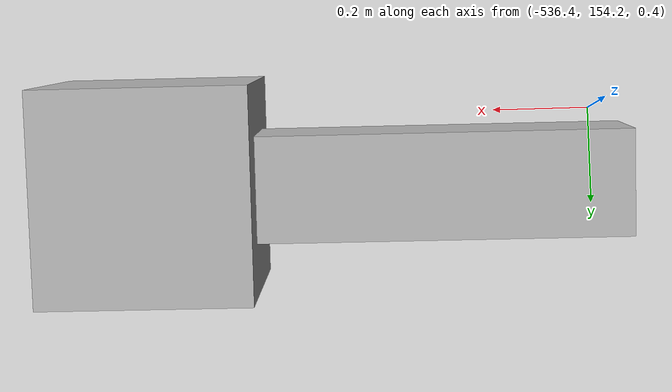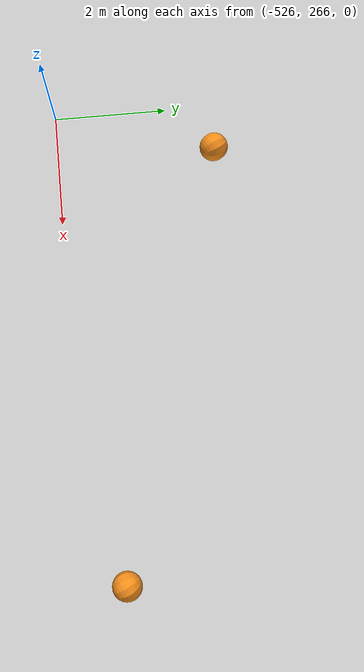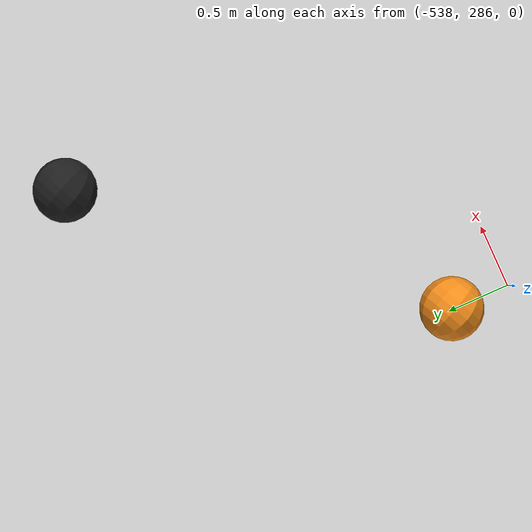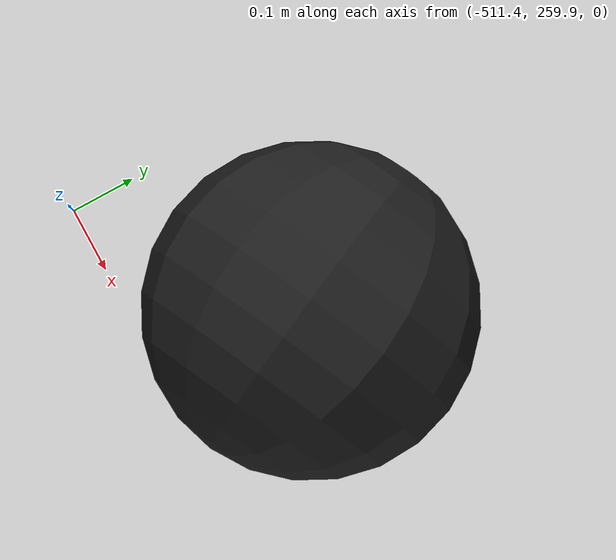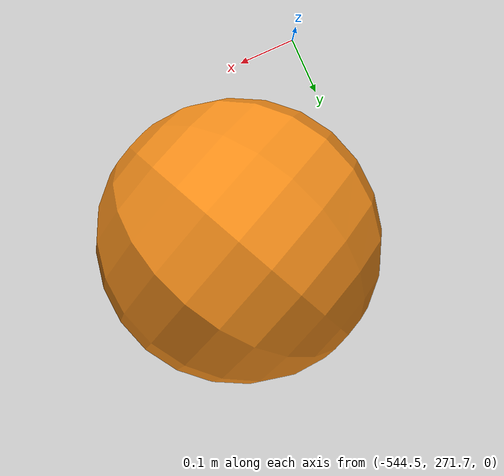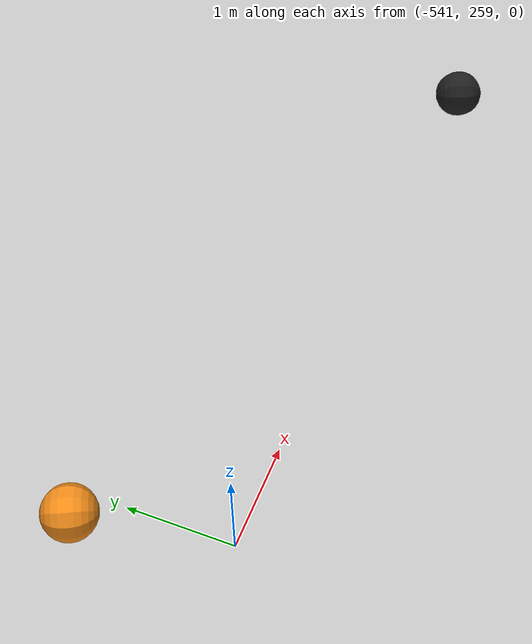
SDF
<sdf version="1.6">
 <world name="robotx_example_course">
  <spherical_coordinates>
   <surface_model>EARTH_WGS84</surface_model>
   <world_frame_orientation>ENU</world_frame_orientation>
   <latitude_deg>-33.724223</latitude_deg>
   <longitude_deg>150.679736</longitude_deg>
   <elevation>0.0</elevation>
   <heading_deg>0.0</heading_deg>
  </spherical_coordinates>
  <include><uri>model://sun</uri></include>
  <include>
   <name>post_0</name>
   <pose>-535.916809 154.362869 0.675884 -0.17182 0.030464 -0.005286</pose>
   <uri>model://post</uri>
  </include>
  <include>
   <name>post_1</name>
   <pose>-527.48999 153.854782 0.425844 -0.1365 0  0</pose>
   <uri>model://post</uri>
  </include>
  <include>
   <name>post_2</name>
   <pose>-544.832825 156.671951 0.499025 -0.162625 0 0</pose>
   <uri>model://post</uri>
  </include>
  <include>
   <name>blue_projectile</name>
   <pose>-545 60 0.03 0 0 0</pose>
   <uri>model://blue_projectile</uri>
  </include>
  <plugin filename="libusv_gazebo_wind_plugin.so" name="wind">
   <wind_obj>
    <name>wamv</name>
    <link_name>wamv/base_link</link_name>
    <coeff_vector>.5 .5 .33</coeff_vector>
   </wind_obj>
   <wind_direction>142</wind_direction>
   <wind_mean_velocity>2.0</wind_mean_velocity>
   <var_wind_gain_constants>5.0</var_wind_gain_constants>
   <var_wind_time_constants>2</var_wind_time_constants>
   <random_seed>72</random_seed>
   <update_rate>10</update_rate>
   <topic_wind_speed>/vrx/debug/wind/speed</topic_wind_speed>
   <topic_wind_direction>/vrx/debug/wind/direction</topic_wind_direction>
  </plugin>
  <scene>
   <sky><clouds><speed>12</speed></clouds></sky>
   <grid>0</grid>
   <origin_visual>0</origin_visual>
   <ambient>0.3 0.3 0.3 1</ambient>
  </scene>
  <include>
   <name>gymkhana_obstacle_course</name>
   <uri>model://obstacles_phase2_2</uri>
   <pose>-531 270 0 0 0 0.44</pose>
  </include>
  <plugin filename="libgymkhana_vrx_scoring_plugin.so" name="gymkhana_scoring_plugin">
   <vehicle>wamv</vehicle>
   <task_name>gymkhana</task_name>
   <task_info_topic>/vrx/task/info</task_info_topic>
   <contact_debug_topic>/vrx/debug/contact</contact_debug_topic>
   <initial_state_duration>10</initial_state_duration>
   <ready_state_duration>10</ready_state_duration>
   <running_state_duration>300</running_state_duration>
   <per_plugin_exit_on_completion>true</per_plugin_exit_on_completion>
   <obstacle_penalty>1</obstacle_penalty>
   <set_position_topic_name>/wamv/sensors/pingers/pinger/set_pinger_position</set_position_topic_name>
   <pinger_position>-536 275 0</pinger_position>
  </plugin>
  <plugin filename="libnavigation_scoring_plugin.so" name="navigation_scoring_plugin">
   <vehicle>wamv</vehicle>
   <task_name>gymkhana_channel</task_name>
   <task_info_topic>/vrx/gymkhana_channel/task/info</task_info_topic>
   <contact_debug_topic>/vrx/gymkhana_channel/debug/contact</contact_debug_topic>
   <per_plugin_exit_on_completion>false</per_plugin_exit_on_completion>
   <initial_state_duration>10</initial_state_duration>
   <ready_state_duration>10</ready_state_duration>
   <running_state_duration>300</running_state_duration>
   <collision_buffer>10</collision_buffer>
   <release_joints>
    <joint><name>wamv_external_pivot_joint</name></joint>
    <joint><name>wamv_external_riser</name></joint>
   </release_joints>
   <course_name>gymkhana_navigation_course</course_name>
   <obstacle_penalty>10.0</obstacle_penalty>
   <gates>
    <gate><left_marker>red_bound_0</left_marker><right_marker>white_bound_0</right_marker></gate>
    <gate><left_marker>red_bound_1</left_marker><right_marker>green_bound_1</right_marker></gate>
    <gate><left_marker>red_bound_2</left_marker><right_marker>green_bound_2</right_marker></gate>
    <gate><left_marker>red_bound_3</left_marker><right_marker>green_bound_3</right_marker></gate>
    <gate><left_marker>red_bound_4</left_marker><right_marker>black_bound_4</right_marker></gate>
   </gates>
   <silent>true</silent>
  </plugin>
  <plugin filename="libstationkeeping_scoring_plugin.so" name="stationkeeping_scoring_plugin">
   <vehicle>wamv</vehicle>
   <task_name>gymkhana_blackbox</task_name>
   <mean_error_topic>/vrx/gymkhana_blackbox/mean_pose_error</mean_error_topic>
   <pose_error_topic>/vrx/gymkhana_blackbox/pose_error</pose_error_topic>
   <goal_topic>/vrx/gymkhana_blackbox/goal</goal_topic>
   <task_info_topic>/vrx/gymkhana_blackbox/task/info</task_info_topic>
   <contact_debug_topic>/vrx/gymkhana_blackbox/debug/contact</contact_debug_topic>
   <per_plugin_exit_on_completion>false</per_plugin_exit_on_completion>
   <head_error_on>false</head_error_on>
   <goal_pose_cart>-536 275 0</goal_pose_cart>
   <initial_state_duration>10</initial_state_duration>
   <ready_state_duration>10</ready_state_duration>
   <running_state_duration>300</running_state_duration>
   <release_joints>
    <joint><name>wamv_external_pivot_joint</name></joint>
    <joint><name>wamv_external_riser</name></joint>
   </release_joints>
   <markers><scaling>0.2 0.2 2.0</scaling><height>0.5</height></markers>
   <silent>true</silent>
  </plugin>
 </world>
</sdf>

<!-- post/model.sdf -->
<sdf version="1.6">
  <model name="post">
    <static>true</static>
    <pose>0 0 0 0 0 0</pose>
    <link name="base_link">
      <visual name="visual_1">
        <geometry>
          <box>
            <size>1 0.2 0.2</size>
          </box>
        </geometry>
      </visual>
      <visual name="visual_2">
        <pose>0.4 0 0 0 0 0</pose>
        <geometry>
          <box>
            <size>0.4 0.4 0.4</size>
          </box>
        </geometry>
      </visual>
      <collision name="collision">
        <pose>0 0 0.5 0 0 0</pose>
        <geometry>
          <box>
            <size>1 0.2 1</size>
          </box>
        </geometry>
      </collision>
    </link>
  </model>
</sdf>

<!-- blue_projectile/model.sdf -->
<sdf version="1.6">
  <model name="blue_projectile">
    <link name="link">
      <inertial>
        <mass>0.04</mass>
        <!-- Mark only - based on cylinder -->
        <inertia>
          <ixx>0.00002166</ixx>
          <ixy>0</ixy>
          <ixz>0</ixz>
          <iyy>00002166</iyy>
          <iyz>0</iyz>
          <izz>00002166</izz>
        </inertia>
      </inertial>
      <collision name="collision">
        <geometry>
          <sphere>
            <radius>0.0285</radius>
          </sphere>
        </geometry>
      </collision>
      <visual name="visual">
        <geometry>
	        <sphere>
            <radius>0.0285</radius>
          </sphere>
        </geometry>
        <material>
          <script>
            <uri>model://blue_projectile/materials/scripts/blue_projectile.material</uri>
            <name>blue_projectile/Blue</name>
          </script>
        </material>
      </visual>
    </link>
    <plugin name="BuoyancyPlugin" filename="libbuoyancy_gazebo_plugin.so">
      <wave_model>ocean_waves</wave_model>
      <fluid_density>1000</fluid_density>
      <fluid_level>0.0</fluid_level>
      <linear_drag>25.0</linear_drag>
      <angular_drag>2.0</angular_drag>
      <buoyancy name="buoyancy_sphere">
        <link_name>link</link_name>
        <pose>0 0 -0.02 0 0 0</pose>
        <geometry>
          <sphere>
            <radius>0.0285</radius>
          </sphere>
        </geometry>
      </buoyancy>
    </plugin>
  </model>
</sdf>

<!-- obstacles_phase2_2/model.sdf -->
<!-- automatically generated by the 'generate_avoid_obstacles_buoys.py' script -->
<sdf version="1.6">
  <model name="obstacles_phase2_2">
    <include>
      <name>mb_round_buoy_orange_0</name>
      <pose>0.6919153538635712 17.878504152592562 0.0 0 0 0 </pose>
      <uri>model://mb_round_buoy_orange</uri>
    </include>

    <include>
      <name>mb_round_buoy_orange_1</name>
      <pose>10.618390375876277 -8.704166241315491 0.0 0 0 0 </pose>
      <uri>model://mb_round_buoy_orange</uri>
    </include>

    <include>
      <name>mb_round_buoy_orange_2</name>
      <pose>-11.158185469533898 7.448883409498674 0.0 0 0 0 </pose>
      <uri>model://mb_round_buoy_orange</uri>
    </include>

    <include>
      <name>mb_round_buoy_orange_3</name>
      <pose>-13.31443187599775 -4.302301341398774 0.0 0 0 0 </pose>
      <uri>model://mb_round_buoy_orange</uri>
    </include>

    <include>
      <name>mb_round_buoy_orange_4</name>
      <pose>4.722093890112369 -3.5227962056501596 0.0 0 0 0 </pose>
      <uri>model://mb_round_buoy_orange</uri>
    </include>

    <include>
      <name>mb_round_buoy_black_0</name>
      <pose>-19.901404751964552 15.361287294884193 0.0 0 0 0 </pose>
      <uri>model://mb_round_buoy_black</uri>
    </include>

    <include>
      <name>mb_round_buoy_black_1</name>
      <pose>15.397901535058942 -7.9836124253407625 0.0 0 0 0 </pose>
      <uri>model://mb_round_buoy_black</uri>
    </include>

    <include>
      <name>mb_round_buoy_black_2</name>
      <pose>3.5832746085885816 19.137076640593236 0.0 0 0 0 </pose>
      <uri>model://mb_round_buoy_black</uri>
    </include>

    <include>
      <name>mb_round_buoy_black_3</name>
      <pose>13.803752885052447 -17.39698243771226 0.0 0 0 0 </pose>
      <uri>model://mb_round_buoy_black</uri>
    </include>

    <include>
      <name>mb_round_buoy_black_4</name>
      <pose>-8.210221411305376 -8.482622361310144 0.0 0 0 0 </pose>
      <uri>model://mb_round_buoy_black</uri>
    </include>

  </model>
</sdf>

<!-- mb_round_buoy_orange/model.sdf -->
<sdf version="1.6">
  <model name="mb_round_buoy_orange">
    <link name="link">
      <inertial>
        <pose>0 0 -2 0 0 0</pose>
        <!-- Mass determined based on buoyancy geometry so object
             floats at mid-point of sphere -->
        <mass>3.5</mass>
        <!-- Mark only - based on cylinder -->
        <inertia>
          <ixx>1.0</ixx>
          <ixy>0</ixy>
          <ixz>0</ixz>
          <iyy>1.0</iyy>
          <iyz>0</iyz>
          <izz>0.1</izz>
        </inertia>
      </inertial>
      <collision name="collision">
        <geometry>
          <sphere>
            <radius>0.25</radius>
          </sphere>
        </geometry>
      </collision>
      <visual name="visual">
        <geometry>
	        <mesh><uri>model://mb_round_buoy_orange/meshes/mb_round_buoy.dae</uri></mesh>
        </geometry>
        <material>
          <script>
            <uri>model://mb_round_buoy_orange/materials/scripts/mb_round_buoy.material</uri>
            <name>mb_round_buoy/Orange</name>
          </script>
        </material>
      </visual>
    </link>
    <plugin name="BuoyancyPlugin" filename="libbuoyancy_gazebo_plugin.so">
      <wave_model>ocean_waves</wave_model>
      <fluid_density>1000</fluid_density>
      <fluid_level>0.0</fluid_level>
      <linear_drag>25.0</linear_drag>
      <angular_drag>2.0</angular_drag>
      <buoyancy name="buoyancy_sphere">
        <link_name>link</link_name>
        <pose>0 0 0.02 0 0 0</pose>
        <geometry>
          <sphere>
            <radius>0.235</radius>
          </sphere>
        </geometry>
      </buoyancy>
    </plugin>
  </model>
</sdf>

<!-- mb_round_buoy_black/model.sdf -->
<sdf version="1.6">
  <model name="mb_round_buoy_black">
    <link name="link">
      <inertial>
        <pose>0 0 -2 0 0 0</pose>
        <!-- Mass determined based on buoyancy geometry so object
             floats at mid-point of sphere -->
        <mass>3.5</mass>
        <!-- Mark only - based on cylinder -->
        <inertia>
          <ixx>1.0</ixx>
          <ixy>0</ixy>
          <ixz>0</ixz>
          <iyy>1.0</iyy>
          <iyz>0</iyz>
          <izz>0.1</izz>
        </inertia>
      </inertial>
      <collision name="collision">
        <geometry>
          <sphere>
            <radius>0.25</radius>
          </sphere>
        </geometry>
      </collision>
      <visual name="visual">
        <geometry>
	        <mesh><uri>model://mb_round_buoy_orange/meshes/mb_round_buoy.dae</uri></mesh>
        </geometry>
        <material>
          <script>
            <uri>file://media/materials/scripts/gazebo.material</uri>
            <name>Gazebo/Black</name>
          </script>
        </material>
      </visual>
    </link>
    <plugin name="BuoyancyPlugin" filename="libbuoyancy_gazebo_plugin.so">
      <wave_model>ocean_waves</wave_model>
      <fluid_density>1000</fluid_density>
      <fluid_level>0.0</fluid_level>
      <linear_drag>25.0</linear_drag>
      <angular_drag>2.0</angular_drag>
      <buoyancy name="buoyancy_sphere">
        <link_name>link</link_name>
        <pose>0 0 0.02 0 0 0</pose>
        <geometry>
          <sphere>
            <radius>0.235</radius>
          </sphere>
        </geometry>
      </buoyancy>
    </plugin>
  </model>
</sdf>
